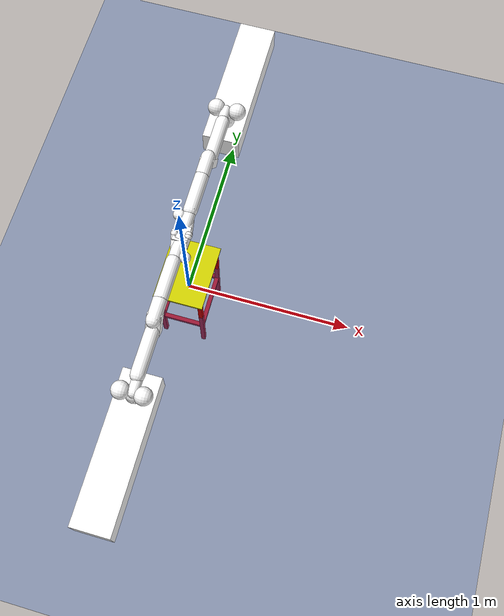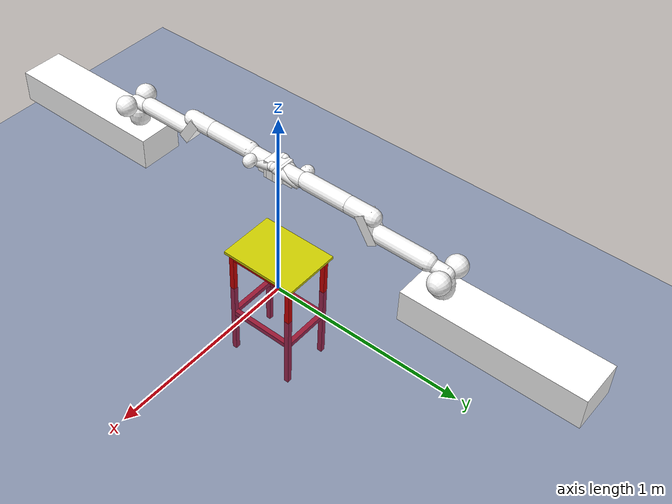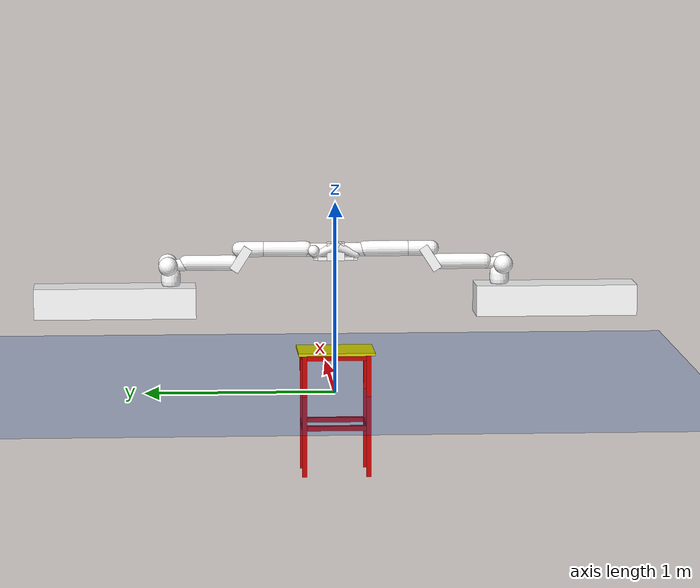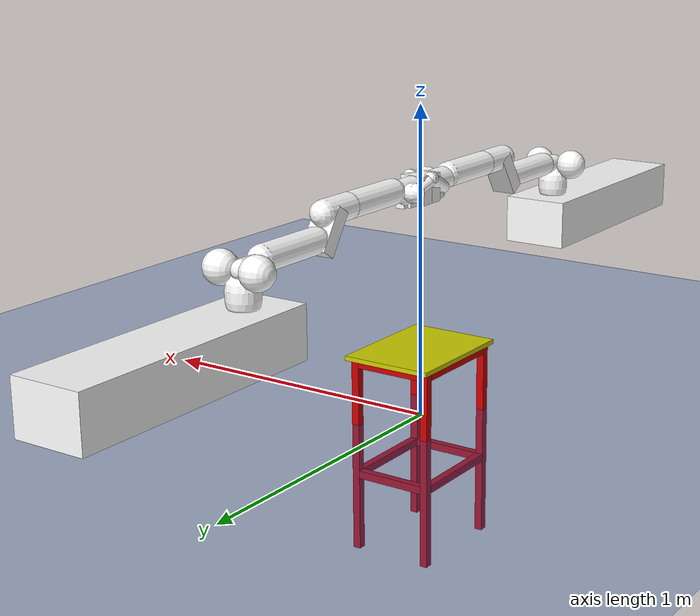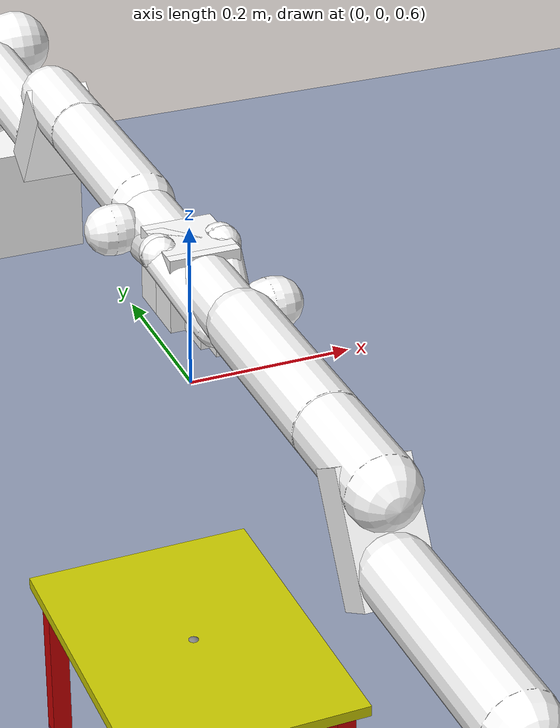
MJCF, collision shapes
<mujoco model="spot_bimanual">
<!-- Copyright (c) 2023 Robotics and AI Institute LLC dba RAI Institute. All rights reserved. -->
  <include file="spot_components/params_and_default.xml" />
  <include file="spot_components/assets.xml" />

  <worldbody>
    <geom name="ground" type="plane" size="2 2 0.01" friction="0.7" priority="5" material="blue_grid"/>

    <include file="spot_components/stool.xml" />

    <body name="body_left" pos="0 1.15 0.49" euler="0 0 -1.57">
      <inertial mass="32.86" pos="0 0 0" diaginertia="0.13143999874591827 0.13143999874591827 0.13143999874591827"/>
      <geom name="body_visual_left" class="visual" mesh="body_visual" material="yellow"/>
      <geom name="body_left" class="collision" type="box" size="0.42 0.11 0.08"/>
      <site name="site_body_left" pos="0 0 0" size="0.01"/>

      <!-- We can deactivate the fixed legs for faster simulation.  -->
      <!-- We'll reactivate them if they are critical. -->

      <body name="arm_link_sh0_left" pos="0.292 0 0.188" gravcomp="1">
        <joint name="arm_sh0_left" class="arm_sh0" type="hinge" axis="0 0 1" pos="0 0 0"/>
        <inertial mass="2.3364000000000003" diaginertia="0.009014303010689815 0.005835102417829581 0.00778747846359954" pos="-0.012372709810733795 -4.5211403630673885e-05 -0.02103196457028389" euler="0.0013490340912847287 -0.15433618253071657 0.0066354181456347305" />
        <geom name="arm_link_sh0_visual_left" class="visual" mesh="arm_link_sh0_visual" material="black"/>
        <geom name="arm_link_sh0_base_left" class="collision" type="capsule" size="0.05 0.015" pos="0 0 -0.07"/>
        <geom name="arm_link_sh0_left_motor_left" class="collision" type="sphere" size="0.05" pos="-0.015 -0.062 0" zaxis="0 1 0"/>
        <geom name="arm_link_sh0_right_motor_left" class="collision" type="sphere" size="0.05" pos="-0.015 0.062 0" zaxis="0 1 0"/>
        <site name="site_arm_link_sh0_left" pos="0 0 0" size="0.01"/>

        <body name="arm_link_sh1_left" pos="0 0 0" gravcomp="1">
          <joint name="arm_sh1_left" class="arm_sh1" type="hinge" axis="0 1 0" pos="0 0 0"/>
          <inertial mass="0.2596" diaginertia="6.312631747339145e-10 1.1487063558949979e-08 1.161105128440526e-08" pos="0.17047011852264404 -0.0019251034827902913 4.483893280848861e-05" euler="-0.01179850657706405 0.0002834144901480151 -0.02372295500868482" />
          <geom name="arm_link_sh1_visual_left" class="visual" mesh="arm_link_sh1_visual" material="yellow"/>
          <geom name="arm_link_sh1_base_left" class="collision" type="capsule" size="0.03 0.04" pos="0.03 -0.005 0" zaxis="1 0 0"/>
          <geom name="arm_link_sh1_body_left" class="collision" type="capsule" size="0.04 0.12" pos="0.2 0 0.01" zaxis="1 0 0"/>
          <site name="site_arm_link_sh1_left" pos="0 0 0" size="0.01"/>

          <body name="arm_link_el0_left" pos="0.3385 0 0" gravcomp="1">
            <joint name="arm_el0_left" class="arm_el0" type="hinge" axis="0 1 0" pos="0 0 0"/>
            <inertial mass="0.725" diaginertia="0.0008215365829160558 0.0020047889807066404 0.0019722797759789395" pos="0.0553741455078125 0.00023603376757819206 0.04827198013663292" euler="-0.004185887288594259 -0.6136269547775202 -0.0004619387581783485" />
            <geom name="arm_link_el0_visual_left" class="visual" mesh="arm_link_el0_visual" material="black"/>
            <geom name="arm_link_el0_joint_left" class="collision" type="box" size="0.07 0.04 0.025" pos="0.025 0 0.03" euler= "0 -1 0"/>
            <geom name="arm_link_el0_body_left" class="collision" type="capsule" size="0.04 0.06" pos="0.08 0 0.08" zaxis="1 0 0"/>
            <site name="site_arm_link_el0_left" pos="0 0 0" size="0.01"/>

            <body name="arm_link_el1_left" pos="0.40330 0.0 0.0750" gravcomp="1">
              <joint name="arm_el1_left" class="arm_el1" type="hinge" axis="1 0 0" pos="0 0 0"/>
              <inertial mass="0.725" diaginertia="0.0006254807525240598 0.004402454711936095 0.004515915146038191" pos="-0.1257835328578949 -0.013684478588402271 0.00010157923679798841" euler="-0.15027374227250867 -0.0007874585461915551 0.003728225436950172" />
              <geom name="arm_link_el1_visual_left" class="visual" mesh="arm_link_el1_visual" material="yellow"/>
              <geom name="arm_link_el1_left" class="collision" type="capsule" size="0.04 0.11" pos="-0.15 0 0.005" zaxis="1 0 0"/>
              <site name="site_arm_link_el1_left" pos="0 0 0" size="0.01"/>

              <body name="arm_link_wr0_left" pos="0 0 0" gravcomp="1">
                <joint name="arm_wr0_left" class="arm_wr0" type="hinge" axis="0 1 0" pos="0 0 0"/>
                <inertial mass="0.98" diaginertia="0.0009851320696685427 0.0008916145765810678 0.0012354892751854467" pos="0.008210677653551102 -0.012051000259816647 3.143483627354726e-05" euler="-0.4951534907966386 0.0033720434077784134 0.020027599337697932" />
                <geom name="arm_link_wr0_visual_left" class="visual" mesh="arm_link_wr0_visual" material="black"/>
                <geom name="arm_link_wr0_knob_left" class="collision" type="capsule" size="0.03 0.005" pos="0 -0.05 0" zaxis="0 1 0"/>
                <geom name="arm_link_wr0_main_left" class="collision" type="capsule" size="0.035 0.08" zaxis="1 0 0"/>
                <site name="site_arm_link_wr0_left" pos="0 0 0" size="0.01"/>

                <body name="arm_link_wr1_left" pos="0 0 0" gravcomp="1">
                  <joint name="arm_wr1_left" class="arm_wr1" type="hinge" axis="1 0 0" pos="0 0 0"/>
                  <inertial mass="0.785" diaginertia="0.00076741362048185 0.0017628124054271809 0.0016818105865345951" pos="0.12516802549362183 0.00010137435310753062 -0.013997982256114483" euler="0.006393076449033863 0.2928526604761865 -0.022814984050994802" />
                  <geom name="arm_link_wr1_visual_left" class="visual" mesh="arm_link_wr1_visual" material="yellow"/>
                  <geom name="arm_link_wr1_left" class="collision" type="box" size="0.04 0.042 0.045" pos="0.11 0 -0.0095" />
                  <geom name="bottom_jaw_left" class="collision" type="box" size="0.03 0.025 0.009" pos="0.18 0 -0.045" />
                  <geom name="front_jaw_left" class="collision" type="box" size="0.016 0.015 0.009" pos="0.215 0 -0.045" />
                  <geom name="front_jaw_tooth_left" class="collision" type="box" size="0.005 0.01 0.005" pos="0.224 0 -0.039" euler="0 1 0" />
                  <site name="site_arm_link_wr1_left" pos="0 0 0" size="0.01"/>

                  <body name="arm_link_fngr_left" pos="0.1174 0.0 0.0148" gravcomp="1">
                    <joint name="arm_f1x_left" class="arm_f1x" type="hinge" axis="0 1 0" pos="0 0 0"/>
                    <inertial mass="0.2" diaginertia="0.000144 0.000300 0.000391" pos="0.0478 -0.0002 -0.0163" euler="0.000342 0.375167 -0.004059" />
                    <geom name="arm_link_fngr_visual_left" class="visual" mesh="arm_link_fngr_visual" material="black"/>
                    <geom name="left_jaw_left" class="collision" type="capsule" size="0.022 0.06" pos="0.05 -0.025 -0.015" euler="0.5 2.0 0"/>
                    <geom name="right_jaw_left" class="collision" type="capsule" size="0.022 0.06" pos="0.05 0.025 -0.015" euler="-0.5 2.0 0"/>
                    <site name="site_arm_link_fngr_left" pos="0 0 0" size="0.01"/>
                  </body>
                </body>
              </body>
            </body>
          </body>
        </body>
      </body>
    </body>
    <body name="body_right" pos="0 -1.15 0.49" euler="0 0 1.57">
      <inertial mass="32.86" pos="0 0 0" diaginertia="0.13143999874591827 0.13143999874591827 0.13143999874591827"/>
      <geom name="body_visual_right" class="visual" mesh="body_visual" material="yellow"/>
      <geom name="body_right" class="collision" type="box" size="0.42 0.11 0.08"/>
      <site name="site_body_right" pos="0 0 0" size="0.01"/>

      <!-- We can deactivate the fixed legs for faster simulation.  -->
      <!-- We'll reactivate them if they are critical. -->

      <body name="arm_link_sh0_right" pos="0.292 0 0.188" gravcomp="1">
        <joint name="arm_sh0_right" class="arm_sh0" type="hinge" axis="0 0 1" pos="0 0 0"/>
        <inertial mass="2.3364000000000003" diaginertia="0.009014303010689815 0.005835102417829581 0.00778747846359954" pos="-0.012372709810733795 -4.5211403630673885e-05 -0.02103196457028389" euler="0.0013490340912847287 -0.15433618253071657 0.0066354181456347305" />
        <geom name="arm_link_sh0_visual_right" class="visual" mesh="arm_link_sh0_visual" material="black"/>
        <geom name="arm_link_sh0_base_right" class="collision" type="capsule" size="0.05 0.015" pos="0 0 -0.07"/>
        <geom name="arm_link_sh0_left_motor_right" class="collision" type="sphere" size="0.05" pos="-0.015 -0.062 0" zaxis="0 1 0"/>
        <geom name="arm_link_sh0_right_motor_right" class="collision" type="sphere" size="0.05" pos="-0.015 0.062 0" zaxis="0 1 0"/>
        <site name="site_arm_link_sh0_right" pos="0 0 0" size="0.01"/>

        <body name="arm_link_sh1_right" pos="0 0 0" gravcomp="1">
          <joint name="arm_sh1_right" class="arm_sh1" type="hinge" axis="0 1 0" pos="0 0 0"/>
          <inertial mass="0.2596" diaginertia="6.312631747339145e-10 1.1487063558949979e-08 1.161105128440526e-08" pos="0.17047011852264404 -0.0019251034827902913 4.483893280848861e-05" euler="-0.01179850657706405 0.0002834144901480151 -0.02372295500868482" />
          <geom name="arm_link_sh1_visual_right" class="visual" mesh="arm_link_sh1_visual" material="yellow"/>
          <geom name="arm_link_sh1_base_right" class="collision" type="capsule" size="0.03 0.04" pos="0.03 -0.005 0" zaxis="1 0 0"/>
          <geom name="arm_link_sh1_body_right" class="collision" type="capsule" size="0.04 0.12" pos="0.2 0 0.01" zaxis="1 0 0"/>
          <site name="site_arm_link_sh1_right" pos="0 0 0" size="0.01"/>

          <body name="arm_link_el0_right" pos="0.3385 0 0" gravcomp="1">
            <joint name="arm_el0_right" class="arm_el0" type="hinge" axis="0 1 0" pos="0 0 0"/>
            <inertial mass="0.725" diaginertia="0.0008215365829160558 0.0020047889807066404 0.0019722797759789395" pos="0.0553741455078125 0.00023603376757819206 0.04827198013663292" euler="-0.004185887288594259 -0.6136269547775202 -0.0004619387581783485" />
            <geom name="arm_link_el0_visual_right" class="visual" mesh="arm_link_el0_visual" material="black"/>
            <geom name="arm_link_el0_joint_right" class="collision" type="box" size="0.07 0.04 0.025" pos="0.025 0 0.03" euler= "0 -1 0"/>
            <geom name="arm_link_el0_body_right" class="collision" type="capsule" size="0.04 0.06" pos="0.08 0 0.08" zaxis="1 0 0"/>
            <site name="site_arm_link_el0_right" pos="0 0 0" size="0.01"/>

            <body name="arm_link_el1_right" pos="0.40330 0.0 0.0750" gravcomp="1">
              <joint name="arm_el1_right" class="arm_el1" type="hinge" axis="1 0 0" pos="0 0 0"/>
              <inertial mass="0.725" diaginertia="0.0006254807525240598 0.004402454711936095 0.004515915146038191" pos="-0.1257835328578949 -0.013684478588402271 0.00010157923679798841" euler="-0.15027374227250867 -0.0007874585461915551 0.003728225436950172" />
              <geom name="arm_link_el1_visual_right" class="visual" mesh="arm_link_el1_visual" material="yellow"/>
              <geom name="arm_link_el1_right" class="collision" type="capsule" size="0.04 0.11" pos="-0.15 0 0.005" zaxis="1 0 0"/>
              <site name="site_arm_link_el1_right" pos="0 0 0" size="0.01"/>

              <body name="arm_link_wr0_right" pos="0 0 0" gravcomp="1">
                <joint name="arm_wr0_right" class="arm_wr0" type="hinge" axis="0 1 0" pos="0 0 0"/>
                <inertial mass="0.98" diaginertia="0.0009851320696685427 0.0008916145765810678 0.0012354892751854467" pos="0.008210677653551102 -0.012051000259816647 3.143483627354726e-05" euler="-0.4951534907966386 0.0033720434077784134 0.020027599337697932" />
                <geom name="arm_link_wr0_visual_right" class="visual" mesh="arm_link_wr0_visual" material="black"/>
                <geom name="arm_link_wr0_knob_right" class="collision" type="capsule" size="0.03 0.005" pos="0 -0.05 0" zaxis="0 1 0"/>
                <geom name="arm_link_wr0_main_right" class="collision" type="capsule" size="0.035 0.08" zaxis="1 0 0"/>
                <site name="site_arm_link_wr0_right" pos="0 0 0" size="0.01"/>

                <body name="arm_link_wr1_right" pos="0 0 0" gravcomp="1">
                  <joint name="arm_wr1_right" class="arm_wr1" type="hinge" axis="1 0 0" pos="0 0 0"/>
                  <inertial mass="0.785" diaginertia="0.00076741362048185 0.0017628124054271809 0.0016818105865345951" pos="0.12516802549362183 0.00010137435310753062 -0.013997982256114483" euler="0.006393076449033863 0.2928526604761865 -0.022814984050994802" />
                  <geom name="arm_link_wr1_visual_right" class="visual" mesh="arm_link_wr1_visual" material="yellow"/>
                  <geom name="arm_link_wr1_right" class="collision" type="box" size="0.04 0.042 0.045" pos="0.11 0 -0.0095" />
                  <geom name="bottom_jaw_right" class="collision" type="box" size="0.03 0.025 0.009" pos="0.18 0 -0.045" />
                  <geom name="front_jaw_right" class="collision" type="box" size="0.016 0.015 0.009" pos="0.215 0 -0.045" />
                  <geom name="front_jaw_tooth_right" class="collision" type="box" size="0.005 0.01 0.005" pos="0.224 0 -0.039" euler="0 1 0" />
                  <site name="site_arm_link_wr1_right" pos="0 0 0" size="0.01"/>

                  <body name="arm_link_fngr_right" pos="0.1174 0.0 0.0148" gravcomp="1">
                    <joint name="arm_f1x_right" class="arm_f1x" type="hinge" axis="0 1 0" pos="0 0 0"/>
                    <inertial mass="0.2" diaginertia="0.000144 0.000300 0.000391" pos="0.0478 -0.0002 -0.0163" euler="0.000342 0.375167 -0.004059" />
                    <geom name="arm_link_fngr_visual_right" class="visual" mesh="arm_link_fngr_visual" material="black"/>
                    <geom name="left_jaw_right" class="collision" type="capsule" size="0.022 0.06" pos="0.05 -0.025 -0.015" euler="0.5 2.0 0"/>
                    <geom name="right_jaw_right" class="collision" type="capsule" size="0.022 0.06" pos="0.05 0.025 -0.015" euler="-0.5 2.0 0"/>
                    <site name="site_arm_link_fngr_right" pos="0 0 0" size="0.01"/>
                  </body>
                </body>
              </body>
            </body>
          </body>
        </body>
      </body>
    </body>
  </worldbody>

  <!-- for some reason necessary here but not for floating spot-->
  <contact>
    <exclude body1="body_left" body2="arm_link_sh0_left"/>
    <exclude body1="body_right" body2="arm_link_sh0_right"/>
  </contact>

  <keyframe>
    <!-- mujoco q = [object_xyz, object_q, arm_and_gripper_pos_left, arm_and_gripper_pos_right] -->
    <key name="home" qpos="0 0 0.275  0 0 0 0  0 0 0 0 0 0  0  0 0 0 0 0 0  0" />
  </keyframe>

  <actuator>
    <position name="act_1_left" joint="arm_sh0_left" class="arm_sh0"/>
    <position name="act_2_left" joint="arm_sh1_left" class="arm_sh1"/>
    <position name="act_3_left" joint="arm_el0_left" class="arm_el0"/>
    <position name="act_4_left" joint="arm_el1_left" class="arm_el1"/>
    <position name="act_5_left" joint="arm_wr0_left" class="arm_wr0"/>
    <position name="act_6_left" joint="arm_wr1_left" class="arm_wr1"/>
    <position name="act_7_left" joint="arm_f1x_left" class="arm_f1x"/>

    <position name="act_1_right" joint="arm_sh0_right" class="arm_sh0"/>
    <position name="act_2_right" joint="arm_sh1_right" class="arm_sh1"/>
    <position name="act_3_right" joint="arm_el0_right" class="arm_el0"/>
    <position name="act_4_right" joint="arm_el1_right" class="arm_el1"/>
    <position name="act_5_right" joint="arm_wr0_right" class="arm_wr0"/>
    <position name="act_6_right" joint="arm_wr1_right" class="arm_wr1"/>
    <position name="act_7_right" joint="arm_f1x_right" class="arm_f1x"/>
  </actuator>

  <sensor>
    <framepos name="sensor_body_left" objtype="site" objname="site_body_left" reftype="site" refname="site_object" />
    <framepos name="sensor_arm_link_sh0_left" objtype="site" objname="site_arm_link_sh0_left" reftype="site" refname="site_object" />
    <framepos name="sensor_arm_link_sh1_left" objtype="site" objname="site_arm_link_sh1_left" reftype="site" refname="site_object" />
    <framepos name="sensor_arm_link_el0_left" objtype="site" objname="site_arm_link_el0_left" reftype="site" refname="site_object" />
    <framepos name="sensor_arm_link_el1_left" objtype="site" objname="site_arm_link_el1_left" reftype="site" refname="site_object" />
    <framepos name="sensor_arm_link_wr0_left" objtype="site" objname="site_arm_link_wr0_left" reftype="site" refname="site_object" />
    <framepos name="sensor_arm_link_wr1_left" objtype="site" objname="site_arm_link_wr1_left" reftype="site" refname="site_object" />
    <framepos name="sensor_arm_link_fngr_left" objtype="site" objname="site_arm_link_fngr_left" reftype="site" refname="site_object" />

      <framepos name="sensor_body_right" objtype="site" objname="site_body_right" reftype="site" refname="site_object" />
    <framepos name="sensor_arm_link_sh0_right" objtype="site" objname="site_arm_link_sh0_right" reftype="site" refname="site_object" />
    <framepos name="sensor_arm_link_sh1_right" objtype="site" objname="site_arm_link_sh1_right" reftype="site" refname="site_object" />
    <framepos name="sensor_arm_link_el0_right" objtype="site" objname="site_arm_link_el0_right" reftype="site" refname="site_object" />
    <framepos name="sensor_arm_link_el1_right" objtype="site" objname="site_arm_link_el1_right" reftype="site" refname="site_object" />
    <framepos name="sensor_arm_link_wr0_right" objtype="site" objname="site_arm_link_wr0_right" reftype="site" refname="site_object" />
    <framepos name="sensor_arm_link_wr1_right" objtype="site" objname="site_arm_link_wr1_right" reftype="site" refname="site_object" />
    <framepos name="sensor_arm_link_fngr_right" objtype="site" objname="site_arm_link_fngr_right" reftype="site" refname="site_object" />
  </sensor>
</mujoco>

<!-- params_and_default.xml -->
<mujoco model="spot_default">
<!-- Copyright (c) 2023 Robotics and AI Institute LLC dba RAI Institute. All rights reserved. -->
  <compiler angle="radian" meshdir="../../meshes/spot/" autolimits="true"/>

  <option timestep="0.003" solver="Newton" density="1">
    <!-- iterations="5" ls_iterations="10" -->
  </option>

  <default>
    <default class="base">
      <joint damping="100" range="-5 5"/>
      <position kp="10" ctrlrange="-10 10" forcerange="-1000 1000"/>
    </default>
    <!-- The arm damping is higher than the damping gains in spot-sim, because actual joint damping is unknown -->
    <default class="arm">
      <default class="arm_sh0">
        <joint damping="51.0" range="-2.61799387799149441136 3.14159265358979311599"/>
        <position kp="1020.0" ctrlrange="-2.61799387799149441136 3.14159265358979311599" forcerange="-90.9 90.0"/>
      </default>
      <default class="arm_sh1">
        <joint damping="76.5" range="-3.14159265358979311599 0.52359877559829881565"/>
        <position kp="255" ctrlrange="-3.14159265358979311599 0.52359877559829881565" forcerange="-181.8 181.8"/>
      </default>
      <default class="arm_el0">
        <joint damping="51.0" range="0 3.14159265358979311599"/>
        <position kp="204.0" ctrlrange="0 3.14159265358979311599" forcerange="-90.9 90.0"/>
      </default>
      <default class="arm_el1">
        <joint damping="10.2" range="-2.79252680319092716487 2.79252680319092716487"/>
        <position kp="102.0" ctrlrange="-2.79252680319092716487 2.79252680319092716487" forcerange="-30.3 30.3"/>
      </default>
      <default class="arm_wr0">
        <joint damping="10.2" range="-1.83259571459404613236 1.83259571459404613236"/>
        <position kp="102.0" ctrlrange="-1.83259571459404613236 1.83259571459404613236" forcerange="-30.9 30.0"/>
      </default>
      <default class="arm_wr1">
        <joint damping="10.2" range="-2.87979326579064354163 2.87979326579064354163"/>
        <position kp="102.0" ctrlrange="-2.87979326579064354163 2.87979326579064354163" forcerange="-30.9 30.0"/>
      </default>
      <default class="arm_f1x">
        <joint damping="1.6" range="-1.57 0"/>
        <position kp="16.0" ctrlrange="-1.57 0" forcerange="-15.32 15.32"/>
      </default>
    </default>
    <default class="visual">
      <geom type="mesh" contype="0" conaffinity="0" group="2"/>
    </default>
    <default class="collision">
      <geom group="3" friction="0.15" priority="4" rgba="1 1 1 1" solimp="0.25 0.5 0.05 0.5 2" solref="0.01 10">
      </geom>
    </default>
    <default class="corner_contact">
      <geom type="sphere" size="1e-7" friction="0.5" priority="3"/>
    </default>

    <default class="leg">
      <default class="hip_x">
        <joint damping="26" range="-0.785398 0.785398"/>
        <position kp="78" ctrlrange="-0.785398 0.785398" forcerange="-145 145"/>
      </default>
      <default class="hip_y">
        <joint damping="26" range="-0.898845 2.29511"/>
        <position kp="117" ctrlrange="-0.898845 2.29511" forcerange="-145 145"/>
      </default>
      <default class="knee">
        <joint damping="10.2" range="-2.7929 -0.254801"/>
        <position kp="35.75" ctrlrange="-2.7929 -0.254801" forcerange="-145 145"/>
      </default>
    </default>

  </default>
</mujoco>

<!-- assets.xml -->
<mujoco model="spot_assets">
<!-- Copyright (c) 2023 Robotics and AI Institute LLC dba RAI Institute. All rights reserved. -->
  <asset>
    <texture name="blue_grid" type="2d" builtin="checker" rgb1=".02 .14 .44" rgb2=".27 .55 1" width="300" height="300" mark="edge" markrgb="1 1 1"/>
    <material name="blue_grid" texture="blue_grid" texrepeat="1 1" texuniform="true" reflectance=".2"/>

    <material name="black" rgba="0.2 0.2 0.3 1"/>
    <material name="yellow" rgba="1 0.8 0.03 1"/>
    <texture name="bdai_texture" type="2d" file="../../meshes/spot/bdaii_spot_wrap.png"/>
    <material name="bdai" texture="bdai_texture" specular="1" shininess="11"/>
    <material name="object" rgba=".7 .5 .3 1"/>

    <texture name="chess_texture" type="2d" builtin="checker" width="1024" height="1024" rgb1="1.0 0.27 0.1" rgb2="1.0 0.84 0.0"/>
    <material name="chess_material" texture="chess_texture"/>

    <mesh name="body" file="../../meshes/spot/base/collision/body_collision.obj"/>
    <mesh name="arm_link_sh0_base" file="../../meshes/spot/arm/collision/arm_link_sh0_base.obj"/>
    <mesh name="arm_link_sh0_left_motor" file="../../meshes/spot/arm/collision/arm_link_sh0_left_motor.obj"/>
    <mesh name="arm_link_sh0_right_motor" file="../../meshes/spot/arm/collision/arm_link_sh0_right_motor.obj"/>
    <mesh name="arm_link_sh1" file="../../meshes/spot/arm/collision/arm_link_sh1.obj"/>
    <mesh name="arm_link_el0" file="../../meshes/spot/arm/collision/arm_link_el0.obj"/>
    <mesh name="arm_link_el1" file="../../meshes/spot/arm/collision/arm_link_el1_main.obj"/>
    <mesh name="arm_link_el1_main" file="../../meshes/spot/arm/collision/arm_link_el1_main.obj"/>
    <mesh name="arm_link_el1_lip" file="../../meshes/spot/arm/collision/arm_link_el1_lip.obj"/>
    <mesh name="arm_link_wr0" file="../../meshes/spot/arm/collision/arm_link_wr0.obj"/>
    <mesh name="arm_link_wr1" file="../../meshes/spot/arm/collision/arm_link_wr1.obj"/>
    <mesh name="left_hinge" file="../../meshes/spot/gripper/collision/left_hinge.obj"/>
    <mesh name="left_finger" file="../../meshes/spot/gripper/collision/left_finger.obj"/>
    <mesh name="left_tooth" file="../../meshes/spot/gripper/collision/left_tooth.obj"/>
    <mesh name="right_hinge" file="../../meshes/spot/gripper/collision/right_hinge.obj"/>
    <mesh name="right_finger" file="../../meshes/spot/gripper/collision/right_finger.obj"/>
    <mesh name="right_tooth" file="../../meshes/spot/gripper/collision/right_tooth.obj"/>
    <mesh name="front_jaw" file="../../meshes/spot/gripper/collision/front_jaw.obj"/>
    <mesh name="middle_jaw" file="../../meshes/spot/gripper/collision/middle_jaw.obj"/>
    <mesh name="jaw_tooth" file="../../meshes/spot/gripper/collision/jaw_tooth.obj"/>

    <mesh name="body_visual" file="../../meshes/spot/base/visual/body.obj"/>
    <mesh name="arm_link_sh0_visual" file="../../meshes/spot/arm/visual/arm_link_sh0.obj"/>
    <mesh name="arm_link_sh1_visual" file="../../meshes/spot/arm/visual/arm_link_sh1.obj"/>
    <mesh name="arm_link_el0_visual" file="../../meshes/spot/arm/visual/arm_link_el0.obj"/>
    <mesh name="arm_link_el1_visual" file="../../meshes/spot/arm/visual/arm_link_el1.obj"/>
    <mesh name="arm_link_wr0_visual" file="../../meshes/spot/arm/visual/arm_link_wr0.obj"/>
    <mesh name="arm_link_wr1_visual" file="../../meshes/spot/arm/visual/arm_link_wr1.obj"/>
    <mesh name="arm_link_fngr_visual" file="../../meshes/spot/gripper/visual/arm_link_fngr.obj"/>

    <mesh name="left_upper_leg_collision" file="../../meshes/spot/base/collision/left_upper_leg_collision.obj"/>
    <mesh name="left_lower_leg_collision" file="../../meshes/spot/base/collision/left_lower_leg_collision.obj"/>
    <mesh name="right_upper_leg_collision" file="../../meshes/spot/base/collision/right_upper_leg_collision.obj"/>
    <mesh name="right_lower_leg_collision" file="../../meshes/spot/base/collision/right_lower_leg_collision.obj"/>

    <mesh name="front_left_hip_visual" file="../../meshes/spot/base/visual/front_left_hip.obj"/>
    <mesh name="front_left_lower_leg_visual" file="../../meshes/spot/base/visual/front_left_lower_leg.obj"/>
    <mesh name="front_left_upper_leg_visual" file="../../meshes/spot/base/visual/front_left_upper_leg.obj"/>

    <mesh name="front_right_hip_visual" file="../../meshes/spot/base/visual/front_right_hip.obj"/>
    <mesh name="front_right_lower_leg_visual" file="../../meshes/spot/base/visual/front_right_lower_leg.obj"/>
    <mesh name="front_right_upper_leg_visual" file="../../meshes/spot/base/visual/front_right_upper_leg.obj"/>

    <mesh name="rear_left_hip_visual" file="../../meshes/spot/base/visual/rear_left_hip.obj"/>
    <mesh name="rear_left_lower_leg_visual" file="../../meshes/spot/base/visual/rear_left_lower_leg.obj"/>
    <mesh name="rear_left_upper_leg_visual" file="../../meshes/spot/base/visual/rear_left_upper_leg.obj"/>

    <mesh name="rear_right_hip_visual" file="../../meshes/spot/base/visual/rear_right_hip.obj"/>
    <mesh name="rear_right_lower_leg_visual" file="../../meshes/spot/base/visual/rear_right_lower_leg.obj"/>
    <mesh name="rear_right_upper_leg_visual" file="../../meshes/spot/base/visual/rear_right_upper_leg.obj"/>
  </asset>
</mujoco>

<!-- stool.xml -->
<mujoco model="primitive_stool">
<!-- Copyright (c) 2023 Robotics and AI Institute LLC dba RAI Institute. All rights reserved. -->
    <body name="object" pos="0 0 0">
        <joint name="object_joint" type="free" />
        <body name="metal_frames" pos="0 0 0">
            <geom name="surface_box" mass="0.88" pos="0 0 0.22" rgba="0.8 0.8 0 1" size="0.15 0.2 0.0075" type="box"></geom>
            <geom name="leg_1" mass="0.361" pos="0.1275 0.1675 -0.1075 " rgba="0.8 0 0 1" size="0.0125 0.0125 0.32" type="box"></geom>
            <geom name="leg_2" mass="0.361" pos="0.1275 -0.1675 -0.1075 " rgba="0.8 0 0 1" size="0.0125 0.0125 0.32" type="box"></geom>
            <geom name="leg_3" mass="0.361" pos="-0.1275 0.1675 -0.1075 " rgba="0.8 0 0 1" size="0.0125 0.0125 0.32" type="box"></geom>
            <geom name="leg_4" mass="0.361" pos="-0.1275 -0.1675 -0.1075 " rgba="0.8 0 0 1" size="0.0125 0.0125 0.32" type="box"></geom>
            <geom name="upper_beam_1" mass="0.130" pos="0 0.1675 0.2" rgba="0.8 0 0 1" size="0.115 0.0125 0.0125" type="box"></geom>
            <geom name="upper_beam_2" mass="0.175" pos="0.1275 0 0.2" rgba="0.8 0 0 1" size="0.0125 0.155 0.0125" type="box"></geom>
            <geom name="upper_beam_3" mass="0.175" pos="-0.1275 0 0.2" rgba="0.8 0 0 1" size="0.0125 0.155 0.0125" type="box"></geom>
            <geom name="upper_beam_4" mass="0.130" pos="0 -0.1675 0.2" rgba="0.8 0 0 1" size="0.115 0.0125 0.0125" type="box"></geom>
            <geom name="lower_beam_1" mass="0.130" pos="0 0.1675 -0.17" rgba="0.8 0 0 1" size="0.115 0.0125 0.0125" type="box"></geom>
            <geom name="lower_beam_2" mass="0.175" pos="0.1275 0 -0.17" rgba="0.8 0 0 1" size="0.0125 0.155 0.0125" type="box"></geom>
            <geom name="lower_beam_3" mass="0.175" pos="-0.1275 0 -0.17" rgba="0.8 0 0 1" size="0.0125 0.155 0.0125" type="box"></geom>
            <geom name="lower_beam_4" mass="0.130" pos="0 -0.1675 -0.17" rgba="0.8 0 0 1" size="0.115 0.0125 0.0125" type="box"></geom>

            <geom name="leg_extra_1" mass="0.119" pos="0.1275 0.1675 -0.3975 " rgba="0.8 0 0 1" size="0.01 0.01 0.02" type="box"></geom>
            <geom name="leg_extra_2" mass="0.119" pos="0.1275 -0.1675 -0.3975 " rgba="0.8 0 0 1" size="0.01 0.01 0.02" type="box"></geom>
            <geom name="leg_extra_3" mass="0.119" pos="-0.1275 0.1675 -0.3975 " rgba="0.8 0 0 1" size="0.01 0.01 0.02" type="box"></geom>
            <geom name="leg_extra_4" mass="0.119" pos="-0.1275 -0.1675 -0.3975 " rgba="0.8 0 0 1" size="0.01 0.01 0.02" type="box"></geom>
        </body>
        <site name="site_object" pos="0 0 0.22" size="0.01"/>
    </body>
</mujoco>
